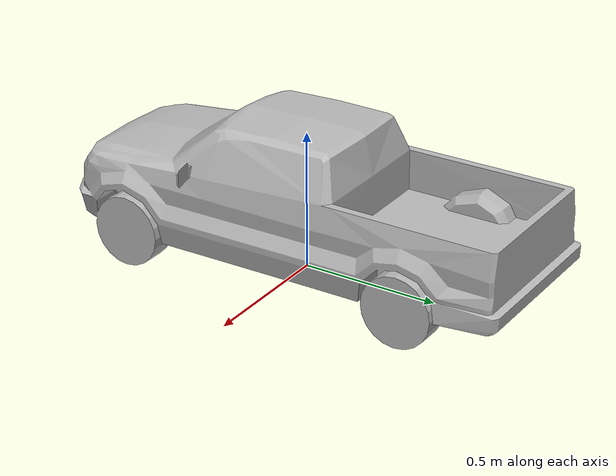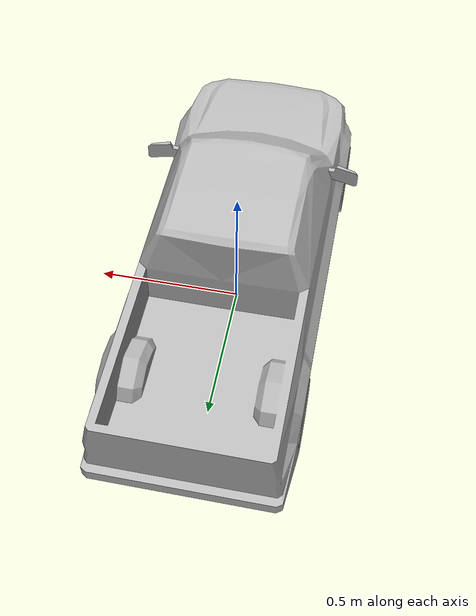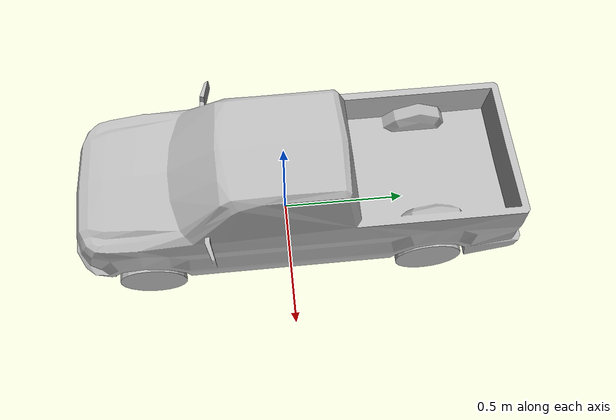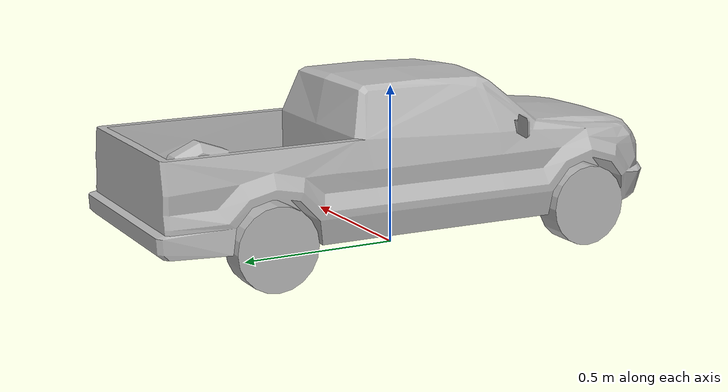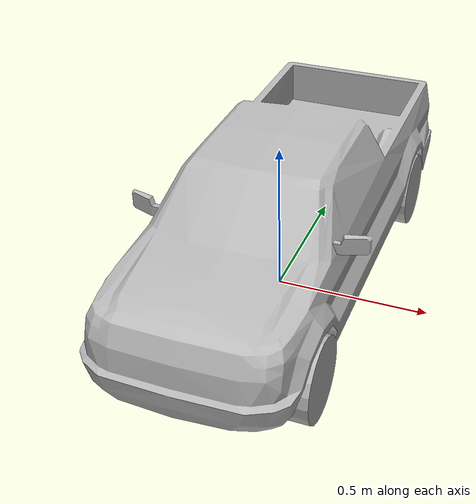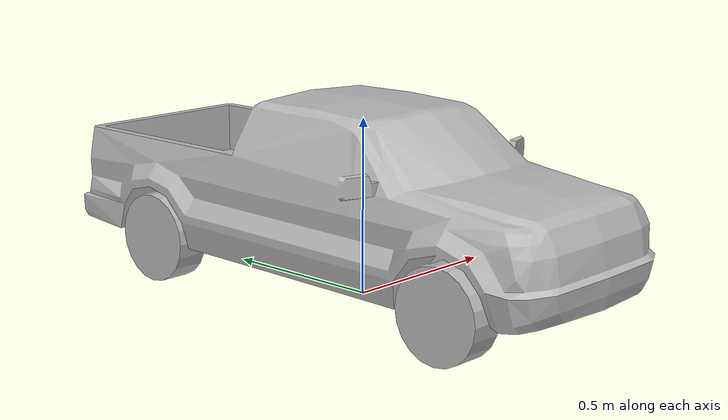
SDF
<?xml version="1.0" ?>
<sdf version="1.6">
  <model name="pickup">
    <static>true</static>
    <link name="link">
      <collision name="collision">
        <pose>0 0 0 0 0 -3.14159</pose>
        <geometry>
          <mesh>
            <uri>model://pickup/meshes/pickup.dae</uri>
            <scale>0.3 0.3 0.3</scale>
          </mesh>
        </geometry>
      </collision>
      <visual name="visual">
        <pose>0 0 0 0 0 -3.14159</pose>
        <geometry>
          <mesh>
            <uri>model://pickup/meshes/pickup.dae</uri>
            <scale>0.3 0.3 0.3</scale>
          </mesh>
        </geometry>
      </visual>
    </link>
  </model>
</sdf>
